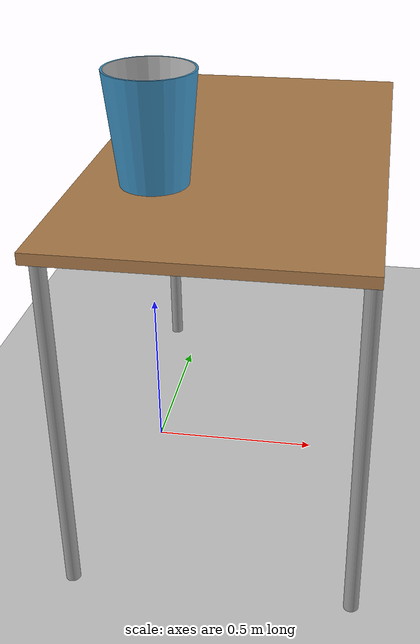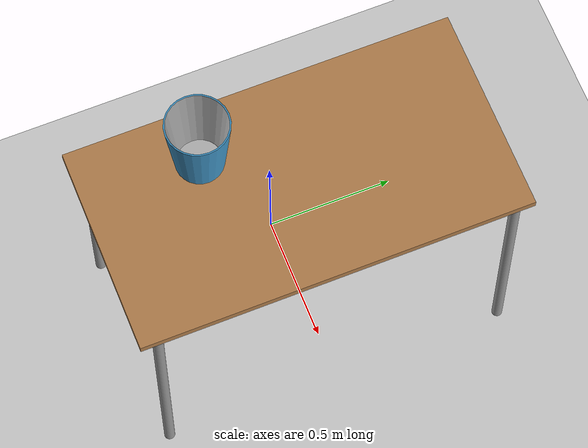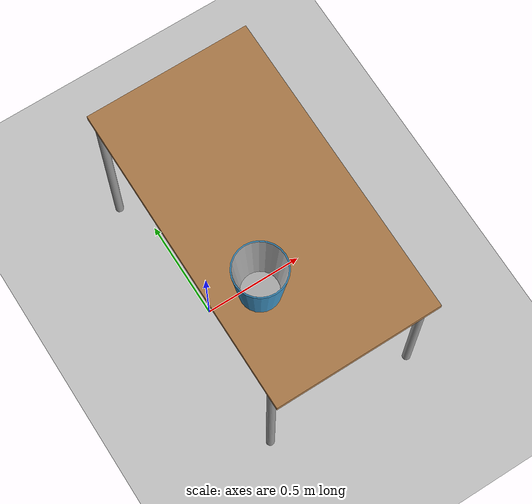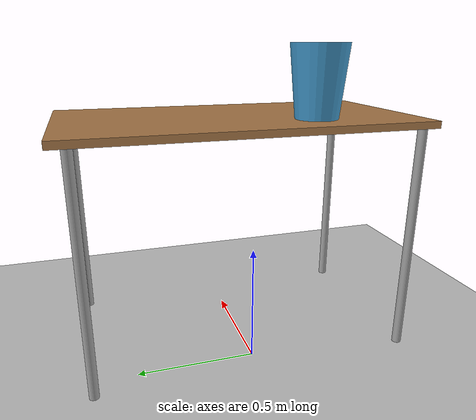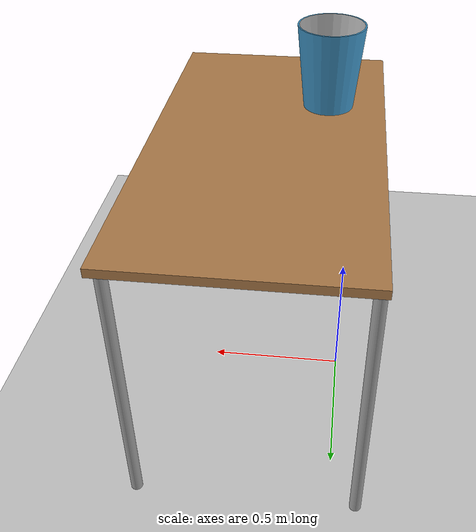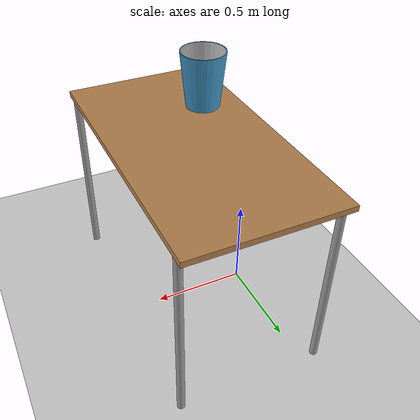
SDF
<sdf version="1.6">
 <world name="CRANE-X7 with Table">
  <scene><shadows>0</shadows></scene>
  <include><uri>model://sun</uri></include>
  <model name="table"><include><uri>model://table</uri></include><pose>0.29 0 0 0 0 1.5708</pose></model>
  <model name="trash bin">
   <include><uri>model://trash_bin</uri></include>
   <pose>0.1 -0.3 1.01 0 0 0</pose>
  </model>
  <model name="ground_plane">
   <include><uri>model://ground_plane</uri></include>
   <joint name="ground_joint" type="fixed"><parent>ground_plane::link</parent><child>table::link</child></joint>
  </model>
 </world>
</sdf>

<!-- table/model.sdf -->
<sdf version="1.5">
  <model name="table">
    <static>true</static>
    <link name="link">
      <collision name="surface">
        <pose>0 0 1.0 0 0 0</pose>
        <geometry>
          <box>
            <size>1.5 0.8 0.03</size>
          </box>
        </geometry>
        <surface>
          <friction>
            <ode>
              <mu>0.6</mu>
              <mu2>0.6</mu2>
            </ode>
          </friction>
        </surface>
      </collision>
      <visual name="visual1">
        <pose>0 0 1.0 0 0 0</pose>
        <geometry>
          <box>
            <size>1.5 0.8 0.03</size>
          </box>
        </geometry>
        <material>
          <script>
            <uri>model://media/materials/scripts/gazebo.material</uri>
            <name>Gazebo/Wood</name>
          </script>
        </material>
      </visual>
      <collision name="front_left_leg">
        <pose>0.68 0.38 0.5 0 0 0</pose>
        <geometry>
          <cylinder>
            <radius>0.02</radius>
            <length>1.0</length>
          </cylinder>
        </geometry>
      </collision>
      <visual name="front_left_leg">
        <pose>0.68 0.38 0.5 0 0 0</pose>
        <geometry>
          <cylinder>
            <radius>0.02</radius>
            <length>1.0</length>
          </cylinder>
        </geometry>
        <material>
          <script>
            <uri>model://media/materials/scripts/gazebo.material</uri>
            <name>Gazebo/Grey</name>
          </script>
        </material>
      </visual>
      <collision name="front_right_leg">
        <pose>0.68 -0.38 0.5 0 0 0</pose>
        <geometry>
          <cylinder>
            <radius>0.02</radius>
            <length>1.0</length>
          </cylinder>
        </geometry>
      </collision>
      <visual name="front_right_leg">
        <pose>0.68 -0.38 0.5 0 0 0</pose>
        <geometry>
          <cylinder>
            <radius>0.02</radius>
            <length>1.0</length>
          </cylinder>
        </geometry>
        <material>
          <script>
            <uri>model://media/materials/scripts/gazebo.material</uri>
            <name>Gazebo/Grey</name>
          </script>
        </material>
      </visual>
      <collision name="back_right_leg">
        <pose>-0.68 -0.38 0.5 0 0 0</pose>
        <geometry>
          <cylinder>
            <radius>0.02</radius>
            <length>1.0</length>
          </cylinder>
        </geometry>
      </collision>
      <visual name="back_right_leg">
        <pose>-0.68 -0.38 0.5 0 0 0</pose>
        <geometry>
          <cylinder>
            <radius>0.02</radius>
            <length>1.0</length>
          </cylinder>
        </geometry>
        <material>
          <script>
            <uri>model://media/materials/scripts/gazebo.material</uri>
            <name>Gazebo/Grey</name>
          </script>
        </material>
      </visual>
      <collision name="back_left_leg">
        <pose>-0.68 0.38 0.5 0 0 0</pose>
        <geometry>
          <cylinder>
            <radius>0.02</radius>
            <length>1.0</length>
          </cylinder>
        </geometry>
      </collision>
      <visual name="back_left_leg">
        <pose>-0.68 0.38 0.5 0 0 0</pose>
        <geometry>
          <cylinder>
            <radius>0.02</radius>
            <length>1.0</length>
          </cylinder>
        </geometry>
        <material>
          <script>
            <uri>model://media/materials/scripts/gazebo.material</uri>
            <name>Gazebo/Grey</name>
          </script>
        </material>
      </visual>
    </link>
  </model>
</sdf>

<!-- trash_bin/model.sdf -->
<sdf version='1.6'>
  <model name='trash_bin'>
    <link name='link_0'>
      <pose frame=''>0 0 0 0 -0 0</pose>
        <visual name='visual'>
        <pose frame=''>0 0 0 0 -0 0</pose>
        <geometry>
          <mesh>
            <uri>model://trash_bin/meshes/outer.dae</uri>
            <scale>0.6 0.6 0.6</scale>
          </mesh>
        </geometry>
        <material>
          <lighting>1</lighting>
            <ambient>0.235 0.556 0.741 1</ambient>
          <diffuse>0.235 0.556 0.741 1</diffuse>
          <specular>0.01 0.01 0.01 1</specular>
          <emissive>0 0 0 1</emissive>
          <shader type='vertex'>
            <normal_map>__default__</normal_map>
          </shader>
        </material>
        <cast_shadows>1</cast_shadows>
        <transparency>0</transparency>
      </visual>
      <collision name='collision'>
        <laser_retro>0</laser_retro>
        <max_contacts>10</max_contacts>
        <pose frame=''>0 0 0 0 -0 0</pose>
        <geometry>
          <mesh>
            <uri>model://trash_bin/meshes/outer.dae</uri>
            <scale>0.6 0.6 0.6</scale>
          </mesh>
        </geometry>
       </collision>
    </link>
    <link name='link_1'>
      <pose frame=''>0 0 0 0 -0 0</pose>
       <visual name='visual'>
        <pose frame=''>0 0 0 0 -0 0</pose>
        <geometry>
          <mesh>
            <uri>model://trash_bin/meshes/inner.dae</uri>
            <scale>0.6 0.6 0.6</scale>
          </mesh>
        </geometry>
        <material>
          <lighting>1</lighting>
            <ambient>0.9 0.9 0.9 1</ambient>
          <diffuse>0.7 0.7 0.7 1</diffuse>
          <specular>0.01 0.01 0.01 1</specular>
          <emissive>0 0 0 1</emissive>
          <shader type='vertex'>
            <normal_map>__default__</normal_map>
          </shader>
        </material>
        <cast_shadows>1</cast_shadows>
        <transparency>0</transparency>
      </visual>
      <collision name='collision'>
        <laser_retro>0</laser_retro>
        <max_contacts>10</max_contacts>
        <pose frame=''>0 0 0 0 -0 0</pose>
        <geometry>
          <mesh>
            <uri>model://trash_bin/meshes/inner.dae</uri>
            <scale>0.6 0.6 0.6</scale>
          </mesh>
        </geometry>
        </collision>
    </link>
    <static>1</static>
    <allow_auto_disable>1</allow_auto_disable>
  </model>
</sdf>
